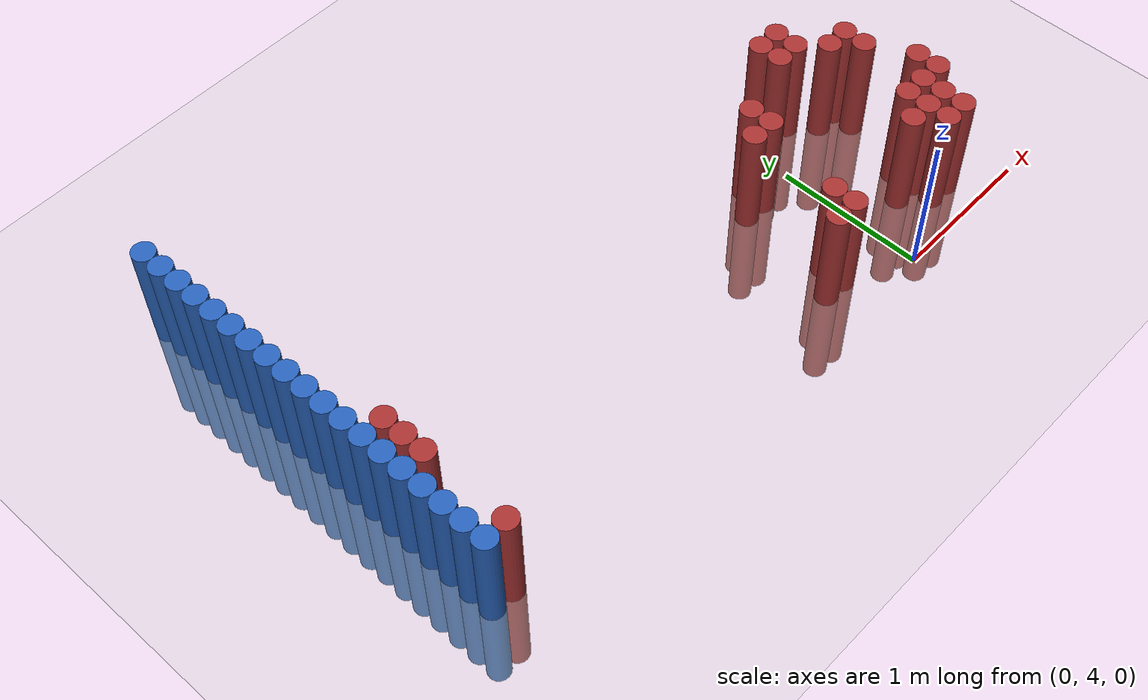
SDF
<sdf version="1.6">
 <world name="default">
  <model name="ground_plane">
   <static>1</static>
   <link name="link">
    <collision name="collision">
     <geometry><plane><normal>0 0 1</normal><size>100 100</size></plane></geometry>
     <surface><friction><ode><mu>100</mu><mu2>50</mu2></ode></friction></surface>
    </collision>
    <visual name="visual">
     <cast_shadows>0</cast_shadows>
     <geometry><plane><normal>0 0 1</normal><size>100 100</size></plane></geometry>
     <material>
      <script><uri>file://media/materials/scripts/gazebo.material</uri><name>Gazebo/Grey</name></script>
     </material>
    </visual>
   </link>
  </model>
  <model name="unit_cylinder_171">
   <static>1</static>
   <pose>-3.425000 4.225000 0.000000 0.000000 0.000000 0.000000</pose>
   <link name="link">
    <inertial>
     <mass>1</mass>
     <inertia><ixx>0.145833</ixx><ixy>0</ixy><ixz>0</ixz><iyy>0.145833</iyy><iyz>0</iyz><izz>0.125</izz></inertia>
    </inertial>
    <collision name="collision">
     <geometry><cylinder><radius>0.075000</radius><length>1.5</length></cylinder></geometry>
    </collision>
    <visual name="visual">
     <geometry><cylinder><radius>0.075000</radius><length>1.5</length></cylinder></geometry>
     <material>
      <ambient>0.152000 0.379000 0.720000 1</ambient>
      <diffuse>0.152000 0.379000 0.720000 1</diffuse>
     </material>
     <material>
      <script><name>Gazebo/Grey</name><uri>file://media/materials/scripts/gazebo.material</uri></script>
     </material>
    </visual>
   </link>
  </model>
  <model name="unit_cylinder_173">
   <static>1</static>
   <pose>-3.425000 4.375000 0.000000 0.000000 0.000000 0.000000</pose>
   <link name="link">
    <inertial>
     <mass>1</mass>
     <inertia><ixx>0.145833</ixx><ixy>0</ixy><ixz>0</ixz><iyy>0.145833</iyy><iyz>0</iyz><izz>0.125</izz></inertia>
    </inertial>
    <collision name="collision">
     <geometry><cylinder><radius>0.075000</radius><length>1.5</length></cylinder></geometry>
    </collision>
    <visual name="visual">
     <geometry><cylinder><radius>0.075000</radius><length>1.5</length></cylinder></geometry>
     <material>
      <ambient>0.152000 0.379000 0.720000 1</ambient>
      <diffuse>0.152000 0.379000 0.720000 1</diffuse>
     </material>
     <material>
      <script><name>Gazebo/Grey</name><uri>file://media/materials/scripts/gazebo.material</uri></script>
     </material>
    </visual>
   </link>
  </model>
  <model name="unit_cylinder_175">
   <static>1</static>
   <pose>-3.425000 4.525000 0.000000 0.000000 0.000000 0.000000</pose>
   <link name="link">
    <inertial>
     <mass>1</mass>
     <inertia><ixx>0.145833</ixx><ixy>0</ixy><ixz>0</ixz><iyy>0.145833</iyy><iyz>0</iyz><izz>0.125</izz></inertia>
    </inertial>
    <collision name="collision">
     <geometry><cylinder><radius>0.075000</radius><length>1.5</length></cylinder></geometry>
    </collision>
    <visual name="visual">
     <geometry><cylinder><radius>0.075000</radius><length>1.5</length></cylinder></geometry>
     <material>
      <ambient>0.152000 0.379000 0.720000 1</ambient>
      <diffuse>0.152000 0.379000 0.720000 1</diffuse>
     </material>
     <material>
      <script><name>Gazebo/Grey</name><uri>file://media/materials/scripts/gazebo.material</uri></script>
     </material>
    </visual>
   </link>
  </model>
  <model name="unit_cylinder_177">
   <static>1</static>
   <pose>-3.425000 4.675000 0.000000 0.000000 0.000000 0.000000</pose>
   <link name="link">
    <inertial>
     <mass>1</mass>
     <inertia><ixx>0.145833</ixx><ixy>0</ixy><ixz>0</ixz><iyy>0.145833</iyy><iyz>0</iyz><izz>0.125</izz></inertia>
    </inertial>
    <collision name="collision">
     <geometry><cylinder><radius>0.075000</radius><length>1.5</length></cylinder></geometry>
    </collision>
    <visual name="visual">
     <geometry><cylinder><radius>0.075000</radius><length>1.5</length></cylinder></geometry>
     <material>
      <ambient>0.152000 0.379000 0.720000 1</ambient>
      <diffuse>0.152000 0.379000 0.720000 1</diffuse>
     </material>
     <material>
      <script><name>Gazebo/Grey</name><uri>file://media/materials/scripts/gazebo.material</uri></script>
     </material>
    </visual>
   </link>
  </model>
  <model name="unit_cylinder_179">
   <static>1</static>
   <pose>-3.425000 4.825000 0.000000 0.000000 0.000000 0.000000</pose>
   <link name="link">
    <inertial>
     <mass>1</mass>
     <inertia><ixx>0.145833</ixx><ixy>0</ixy><ixz>0</ixz><iyy>0.145833</iyy><iyz>0</iyz><izz>0.125</izz></inertia>
    </inertial>
    <collision name="collision">
     <geometry><cylinder><radius>0.075000</radius><length>1.5</length></cylinder></geometry>
    </collision>
    <visual name="visual">
     <geometry><cylinder><radius>0.075000</radius><length>1.5</length></cylinder></geometry>
     <material>
      <ambient>0.152000 0.379000 0.720000 1</ambient>
      <diffuse>0.152000 0.379000 0.720000 1</diffuse>
     </material>
     <material>
      <script><name>Gazebo/Grey</name><uri>file://media/materials/scripts/gazebo.material</uri></script>
     </material>
    </visual>
   </link>
  </model>
  <model name="unit_cylinder_181">
   <static>1</static>
   <pose>-3.425000 4.975000 0.000000 0.000000 0.000000 0.000000</pose>
   <link name="link">
    <inertial>
     <mass>1</mass>
     <inertia><ixx>0.145833</ixx><ixy>0</ixy><ixz>0</ixz><iyy>0.145833</iyy><iyz>0</iyz><izz>0.125</izz></inertia>
    </inertial>
    <collision name="collision">
     <geometry><cylinder><radius>0.075000</radius><length>1.5</length></cylinder></geometry>
    </collision>
    <visual name="visual">
     <geometry><cylinder><radius>0.075000</radius><length>1.5</length></cylinder></geometry>
     <material>
      <ambient>0.152000 0.379000 0.720000 1</ambient>
      <diffuse>0.152000 0.379000 0.720000 1</diffuse>
     </material>
     <material>
      <script><name>Gazebo/Grey</name><uri>file://media/materials/scripts/gazebo.material</uri></script>
     </material>
    </visual>
   </link>
  </model>
  <model name="unit_cylinder_183">
   <static>1</static>
   <pose>-3.425000 5.125000 0.000000 0.000000 0.000000 0.000000</pose>
   <link name="link">
    <inertial>
     <mass>1</mass>
     <inertia><ixx>0.145833</ixx><ixy>0</ixy><ixz>0</ixz><iyy>0.145833</iyy><iyz>0</iyz><izz>0.125</izz></inertia>
    </inertial>
    <collision name="collision">
     <geometry><cylinder><radius>0.075000</radius><length>1.5</length></cylinder></geometry>
    </collision>
    <visual name="visual">
     <geometry><cylinder><radius>0.075000</radius><length>1.5</length></cylinder></geometry>
     <material>
      <ambient>0.152000 0.379000 0.720000 1</ambient>
      <diffuse>0.152000 0.379000 0.720000 1</diffuse>
     </material>
     <material>
      <script><name>Gazebo/Grey</name><uri>file://media/materials/scripts/gazebo.material</uri></script>
     </material>
    </visual>
   </link>
  </model>
  <model name="unit_cylinder_185">
   <static>1</static>
   <pose>-3.425000 5.275000 0.000000 0.000000 0.000000 0.000000</pose>
   <link name="link">
    <inertial>
     <mass>1</mass>
     <inertia><ixx>0.145833</ixx><ixy>0</ixy><ixz>0</ixz><iyy>0.145833</iyy><iyz>0</iyz><izz>0.125</izz></inertia>
    </inertial>
    <collision name="collision">
     <geometry><cylinder><radius>0.075000</radius><length>1.5</length></cylinder></geometry>
    </collision>
    <visual name="visual">
     <geometry><cylinder><radius>0.075000</radius><length>1.5</length></cylinder></geometry>
     <material>
      <ambient>0.152000 0.379000 0.720000 1</ambient>
      <diffuse>0.152000 0.379000 0.720000 1</diffuse>
     </material>
     <material>
      <script><name>Gazebo/Grey</name><uri>file://media/materials/scripts/gazebo.material</uri></script>
     </material>
    </visual>
   </link>
  </model>
  <model name="unit_cylinder_187">
   <static>1</static>
   <pose>-3.425000 5.425000 0.000000 0.000000 0.000000 0.000000</pose>
   <link name="link">
    <inertial>
     <mass>1</mass>
     <inertia><ixx>0.145833</ixx><ixy>0</ixy><ixz>0</ixz><iyy>0.145833</iyy><iyz>0</iyz><izz>0.125</izz></inertia>
    </inertial>
    <collision name="collision">
     <geometry><cylinder><radius>0.075000</radius><length>1.5</length></cylinder></geometry>
    </collision>
    <visual name="visual">
     <geometry><cylinder><radius>0.075000</radius><length>1.5</length></cylinder></geometry>
     <material>
      <ambient>0.152000 0.379000 0.720000 1</ambient>
      <diffuse>0.152000 0.379000 0.720000 1</diffuse>
     </material>
     <material>
      <script><name>Gazebo/Grey</name><uri>file://media/materials/scripts/gazebo.material</uri></script>
     </material>
    </visual>
   </link>
  </model>
  <model name="unit_cylinder_189">
   <static>1</static>
   <pose>-3.425000 5.575000 0.000000 0.000000 0.000000 0.000000</pose>
   <link name="link">
    <inertial>
     <mass>1</mass>
     <inertia><ixx>0.145833</ixx><ixy>0</ixy><ixz>0</ixz><iyy>0.145833</iyy><iyz>0</iyz><izz>0.125</izz></inertia>
    </inertial>
    <collision name="collision">
     <geometry><cylinder><radius>0.075000</radius><length>1.5</length></cylinder></geometry>
    </collision>
    <visual name="visual">
     <geometry><cylinder><radius>0.075000</radius><length>1.5</length></cylinder></geometry>
     <material>
      <ambient>0.152000 0.379000 0.720000 1</ambient>
      <diffuse>0.152000 0.379000 0.720000 1</diffuse>
     </material>
     <material>
      <script><name>Gazebo/Grey</name><uri>file://media/materials/scripts/gazebo.material</uri></script>
     </material>
    </visual>
   </link>
  </model>
  <model name="unit_cylinder_191">
   <static>1</static>
   <pose>-3.425000 5.725000 0.000000 0.000000 0.000000 0.000000</pose>
   <link name="link">
    <inertial>
     <mass>1</mass>
     <inertia><ixx>0.145833</ixx><ixy>0</ixy><ixz>0</ixz><iyy>0.145833</iyy><iyz>0</iyz><izz>0.125</izz></inertia>
    </inertial>
    <collision name="collision">
     <geometry><cylinder><radius>0.075000</radius><length>1.5</length></cylinder></geometry>
    </collision>
    <visual name="visual">
     <geometry><cylinder><radius>0.075000</radius><length>1.5</length></cylinder></geometry>
     <material>
      <ambient>0.152000 0.379000 0.720000 1</ambient>
      <diffuse>0.152000 0.379000 0.720000 1</diffuse>
     </material>
     <material>
      <script><name>Gazebo/Grey</name><uri>file://media/materials/scripts/gazebo.material</uri></script>
     </material>
    </visual>
   </link>
  </model>
  <model name="unit_cylinder_193">
   <static>1</static>
   <pose>-3.425000 5.875000 0.000000 0.000000 0.000000 0.000000</pose>
   <link name="link">
    <inertial>
     <mass>1</mass>
     <inertia><ixx>0.145833</ixx><ixy>0</ixy><ixz>0</ixz><iyy>0.145833</iyy><iyz>0</iyz><izz>0.125</izz></inertia>
    </inertial>
    <collision name="collision">
     <geometry><cylinder><radius>0.075000</radius><length>1.5</length></cylinder></geometry>
    </collision>
    <visual name="visual">
     <geometry><cylinder><radius>0.075000</radius><length>1.5</length></cylinder></geometry>
     <material>
      <ambient>0.152000 0.379000 0.720000 1</ambient>
      <diffuse>0.152000 0.379000 0.720000 1</diffuse>
     </material>
     <material>
      <script><name>Gazebo/Grey</name><uri>file://media/materials/scripts/gazebo.material</uri></script>
     </material>
    </visual>
   </link>
  </model>
  <model name="unit_cylinder_195">
   <static>1</static>
   <pose>-3.425000 6.025000 0.000000 0.000000 0.000000 0.000000</pose>
   <link name="link">
    <inertial>
     <mass>1</mass>
     <inertia><ixx>0.145833</ixx><ixy>0</ixy><ixz>0</ixz><iyy>0.145833</iyy><iyz>0</iyz><izz>0.125</izz></inertia>
    </inertial>
    <collision name="collision">
     <geometry><cylinder><radius>0.075000</radius><length>1.5</length></cylinder></geometry>
    </collision>
    <visual name="visual">
     <geometry><cylinder><radius>0.075000</radius><length>1.5</length></cylinder></geometry>
     <material>
      <ambient>0.152000 0.379000 0.720000 1</ambient>
      <diffuse>0.152000 0.379000 0.720000 1</diffuse>
     </material>
     <material>
      <script><name>Gazebo/Grey</name><uri>file://media/materials/scripts/gazebo.material</uri></script>
     </material>
    </visual>
   </link>
  </model>
  <model name="unit_cylinder_197">
   <static>1</static>
   <pose>-3.425000 6.175000 0.000000 0.000000 0.000000 0.000000</pose>
   <link name="link">
    <inertial>
     <mass>1</mass>
     <inertia><ixx>0.145833</ixx><ixy>0</ixy><ixz>0</ixz><iyy>0.145833</iyy><iyz>0</iyz><izz>0.125</izz></inertia>
    </inertial>
    <collision name="collision">
     <geometry><cylinder><radius>0.075000</radius><length>1.5</length></cylinder></geometry>
    </collision>
    <visual name="visual">
     <geometry><cylinder><radius>0.075000</radius><length>1.5</length></cylinder></geometry>
     <material>
      <ambient>0.152000 0.379000 0.720000 1</ambient>
      <diffuse>0.152000 0.379000 0.720000 1</diffuse>
     </material>
     <material>
      <script><name>Gazebo/Grey</name><uri>file://media/materials/scripts/gazebo.material</uri></script>
     </material>
    </visual>
   </link>
  </model>
  <model name="unit_cylinder_199">
   <static>1</static>
   <pose>-3.425000 6.325000 0.000000 0.000000 0.000000 0.000000</pose>
   <link name="link">
    <inertial>
     <mass>1</mass>
     <inertia><ixx>0.145833</ixx><ixy>0</ixy><ixz>0</ixz><iyy>0.145833</iyy><iyz>0</iyz><izz>0.125</izz></inertia>
    </inertial>
    <collision name="collision">
     <geometry><cylinder><radius>0.075000</radius><length>1.5</length></cylinder></geometry>
    </collision>
    <visual name="visual">
     <geometry><cylinder><radius>0.075000</radius><length>1.5</length></cylinder></geometry>
     <material>
      <ambient>0.152000 0.379000 0.720000 1</ambient>
      <diffuse>0.152000 0.379000 0.720000 1</diffuse>
     </material>
     <material>
      <script><name>Gazebo/Grey</name><uri>file://media/materials/scripts/gazebo.material</uri></script>
     </material>
    </visual>
   </link>
  </model>
  <model name="unit_cylinder_201">
   <static>1</static>
   <pose>-3.425000 6.475000 0.000000 0.000000 0.000000 0.000000</pose>
   <link name="link">
    <inertial>
     <mass>1</mass>
     <inertia><ixx>0.145833</ixx><ixy>0</ixy><ixz>0</ixz><iyy>0.145833</iyy><iyz>0</iyz><izz>0.125</izz></inertia>
    </inertial>
    <collision name="collision">
     <geometry><cylinder><radius>0.075000</radius><length>1.5</length></cylinder></geometry>
    </collision>
    <visual name="visual">
     <geometry><cylinder><radius>0.075000</radius><length>1.5</length></cylinder></geometry>
     <material>
      <ambient>0.152000 0.379000 0.720000 1</ambient>
      <diffuse>0.152000 0.379000 0.720000 1</diffuse>
     </material>
     <material>
      <script><name>Gazebo/Grey</name><uri>file://media/materials/scripts/gazebo.material</uri></script>
     </material>
    </visual>
   </link>
  </model>
  <model name="unit_cylinder_203">
   <static>1</static>
   <pose>-3.425000 6.625000 0.000000 0.000000 0.000000 0.000000</pose>
   <link name="link">
    <inertial>
     <mass>1</mass>
     <inertia><ixx>0.145833</ixx><ixy>0</ixy><ixz>0</ixz><iyy>0.145833</iyy><iyz>0</iyz><izz>0.125</izz></inertia>
    </inertial>
    <collision name="collision">
     <geometry><cylinder><radius>0.075000</radius><length>1.5</length></cylinder></geometry>
    </collision>
    <visual name="visual">
     <geometry><cylinder><radius>0.075000</radius><length>1.5</length></cylinder></geometry>
     <material>
      <ambient>0.152000 0.379000 0.720000 1</ambient>
      <diffuse>0.152000 0.379000 0.720000 1</diffuse>
     </material>
     <material>
      <script><name>Gazebo/Grey</name><uri>file://media/materials/scripts/gazebo.material</uri></script>
     </material>
    </visual>
   </link>
  </model>
  <model name="unit_cylinder_205">
   <static>1</static>
   <pose>-3.425000 6.775000 0.000000 0.000000 0.000000 0.000000</pose>
   <link name="link">
    <inertial>
     <mass>1</mass>
     <inertia><ixx>0.145833</ixx><ixy>0</ixy><ixz>0</ixz><iyy>0.145833</iyy><iyz>0</iyz><izz>0.125</izz></inertia>
    </inertial>
    <collision name="collision">
     <geometry><cylinder><radius>0.075000</radius><length>1.5</length></cylinder></geometry>
    </collision>
    <visual name="visual">
     <geometry><cylinder><radius>0.075000</radius><length>1.5</length></cylinder></geometry>
     <material>
      <ambient>0.152000 0.379000 0.720000 1</ambient>
      <diffuse>0.152000 0.379000 0.720000 1</diffuse>
     </material>
     <material>
      <script><name>Gazebo/Grey</name><uri>file://media/materials/scripts/gazebo.material</uri></script>
     </material>
    </visual>
   </link>
  </model>
  <model name="unit_cylinder_207">
   <static>1</static>
   <pose>-3.425000 6.925000 0.000000 0.000000 0.000000 0.000000</pose>
   <link name="link">
    <inertial>
     <mass>1</mass>
     <inertia><ixx>0.145833</ixx><ixy>0</ixy><ixz>0</ixz><iyy>0.145833</iyy><iyz>0</iyz><izz>0.125</izz></inertia>
    </inertial>
    <collision name="collision">
     <geometry><cylinder><radius>0.075000</radius><length>1.5</length></cylinder></geometry>
    </collision>
    <visual name="visual">
     <geometry><cylinder><radius>0.075000</radius><length>1.5</length></cylinder></geometry>
     <material>
      <ambient>0.152000 0.379000 0.720000 1</ambient>
      <diffuse>0.152000 0.379000 0.720000 1</diffuse>
     </material>
     <material>
      <script><name>Gazebo/Grey</name><uri>file://media/materials/scripts/gazebo.material</uri></script>
     </material>
    </visual>
   </link>
  </model>
  <model name="unit_cylinder_249">
   <static>1</static>
   <pose>-3.425000 4.225000 0.000000 0.000000 0.000000 0.000000</pose>
   <link name="link">
    <inertial>
     <mass>1</mass>
     <inertia><ixx>0.145833</ixx><ixy>0</ixy><ixz>0</ixz><iyy>0.145833</iyy><iyz>0</iyz><izz>0.125</izz></inertia>
    </inertial>
    <collision name="collision">
     <geometry><cylinder><radius>0.075000</radius><length>1.5</length></cylinder></geometry>
    </collision>
    <visual name="visual">
     <geometry><cylinder><radius>0.075000</radius><length>1.5</length></cylinder></geometry>
     <material>
      <ambient>0.152000 0.379000 0.720000 1</ambient>
      <diffuse>0.152000 0.379000 0.720000 1</diffuse>
     </material>
     <material>
      <script><name>Gazebo/Grey</name><uri>file://media/materials/scripts/gazebo.material</uri></script>
     </material>
    </visual>
   </link>
  </model>
  <model name="unit_cylinder_250">
   <static>1</static>
   <pose>-3.425000 4.375000 0.000000 0.000000 0.000000 0.000000</pose>
   <link name="link">
    <inertial>
     <mass>1</mass>
     <inertia><ixx>0.145833</ixx><ixy>0</ixy><ixz>0</ixz><iyy>0.145833</iyy><iyz>0</iyz><izz>0.125</izz></inertia>
    </inertial>
    <collision name="collision">
     <geometry><cylinder><radius>0.075000</radius><length>1.5</length></cylinder></geometry>
    </collision>
    <visual name="visual">
     <geometry><cylinder><radius>0.075000</radius><length>1.5</length></cylinder></geometry>
     <material>
      <ambient>0.152000 0.379000 0.720000 1</ambient>
      <diffuse>0.152000 0.379000 0.720000 1</diffuse>
     </material>
     <material>
      <script><name>Gazebo/Grey</name><uri>file://media/materials/scripts/gazebo.material</uri></script>
     </material>
    </visual>
   </link>
  </model>
  <model name="unit_cylinder_251">
   <static>1</static>
   <pose>-3.425000 4.525000 0.000000 0.000000 0.000000 0.000000</pose>
   <link name="link">
    <inertial>
     <mass>1</mass>
     <inertia><ixx>0.145833</ixx><ixy>0</ixy><ixz>0</ixz><iyy>0.145833</iyy><iyz>0</iyz><izz>0.125</izz></inertia>
    </inertial>
    <collision name="collision">
     <geometry><cylinder><radius>0.075000</radius><length>1.5</length></cylinder></geometry>
    </collision>
    <visual name="visual">
     <geometry><cylinder><radius>0.075000</radius><length>1.5</length></cylinder></geometry>
     <material>
      <ambient>0.152000 0.379000 0.720000 1</ambient>
      <diffuse>0.152000 0.379000 0.720000 1</diffuse>
     </material>
     <material>
      <script><name>Gazebo/Grey</name><uri>file://media/materials/scripts/gazebo.material</uri></script>
     </material>
    </visual>
   </link>
  </model>
  <model name="unit_cylinder_252">
   <static>1</static>
   <pose>-3.425000 4.675000 0.000000 0.000000 0.000000 0.000000</pose>
   <link name="link">
    <inertial>
     <mass>1</mass>
     <inertia><ixx>0.145833</ixx><ixy>0</ixy><ixz>0</ixz><iyy>0.145833</iyy><iyz>0</iyz><izz>0.125</izz></inertia>
    </inertial>
    <collision name="collision">
     <geometry><cylinder><radius>0.075000</radius><length>1.5</length></cylinder></geometry>
    </collision>
    <visual name="visual">
     <geometry><cylinder><radius>0.075000</radius><length>1.5</length></cylinder></geometry>
     <material>
      <ambient>0.152000 0.379000 0.720000 1</ambient>
      <diffuse>0.152000 0.379000 0.720000 1</diffuse>
     </material>
     <material>
      <script><name>Gazebo/Grey</name><uri>file://media/materials/scripts/gazebo.material</uri></script>
     </material>
    </visual>
   </link>
  </model>
  <model name="unit_cylinder_253">
   <static>1</static>
   <pose>-3.425000 4.825000 0.000000 0.000000 0.000000 0.000000</pose>
   <link name="link">
    <inertial>
     <mass>1</mass>
     <inertia><ixx>0.145833</ixx><ixy>0</ixy><ixz>0</ixz><iyy>0.145833</iyy><iyz>0</iyz><izz>0.125</izz></inertia>
    </inertial>
    <collision name="collision">
     <geometry><cylinder><radius>0.075000</radius><length>1.5</length></cylinder></geometry>
    </collision>
    <visual name="visual">
     <geometry><cylinder><radius>0.075000</radius><length>1.5</length></cylinder></geometry>
     <material>
      <ambient>0.152000 0.379000 0.720000 1</ambient>
      <diffuse>0.152000 0.379000 0.720000 1</diffuse>
     </material>
     <material>
      <script><name>Gazebo/Grey</name><uri>file://media/materials/scripts/gazebo.material</uri></script>
     </material>
    </visual>
   </link>
  </model>
  <model name="unit_cylinder_254">
   <static>1</static>
   <pose>-3.425000 4.975000 0.000000 0.000000 0.000000 0.000000</pose>
   <link name="link">
    <inertial>
     <mass>1</mass>
     <inertia><ixx>0.145833</ixx><ixy>0</ixy><ixz>0</ixz><iyy>0.145833</iyy><iyz>0</iyz><izz>0.125</izz></inertia>
    </inertial>
    <collision name="collision">
     <geometry><cylinder><radius>0.075000</radius><length>1.5</length></cylinder></geometry>
    </collision>
    <visual name="visual">
     <geometry><cylinder><radius>0.075000</radius><length>1.5</length></cylinder></geometry>
     <material>
      <ambient>0.152000 0.379000 0.720000 1</ambient>
      <diffuse>0.152000 0.379000 0.720000 1</diffuse>
     </material>
     <material>
      <script><name>Gazebo/Grey</name><uri>file://media/materials/scripts/gazebo.material</uri></script>
     </material>
    </visual>
   </link>
  </model>
  <model name="unit_cylinder_255">
   <static>1</static>
   <pose>-3.425000 5.125000 0.000000 0.000000 0.000000 0.000000</pose>
   <link name="link">
    <inertial>
     <mass>1</mass>
     <inertia><ixx>0.145833</ixx><ixy>0</ixy><ixz>0</ixz><iyy>0.145833</iyy><iyz>0</iyz><izz>0.125</izz></inertia>
    </inertial>
    <collision name="collision">
     <geometry><cylinder><radius>0.075000</radius><length>1.5</length></cylinder></geometry>
    </collision>
    <visual name="visual">
     <geometry><cylinder><radius>0.075000</radius><length>1.5</length></cylinder></geometry>
     <material>
      <ambient>0.152000 0.379000 0.720000 1</ambient>
      <diffuse>0.152000 0.379000 0.720000 1</diffuse>
     </material>
     <material>
      <script><name>Gazebo/Grey</name><uri>file://media/materials/scripts/gazebo.material</uri></script>
     </material>
    </visual>
   </link>
  </model>
  <model name="unit_cylinder_256">
   <static>1</static>
   <pose>-3.425000 5.275000 0.000000 0.000000 0.000000 0.000000</pose>
   <link name="link">
    <inertial>
     <mass>1</mass>
     <inertia><ixx>0.145833</ixx><ixy>0</ixy><ixz>0</ixz><iyy>0.145833</iyy><iyz>0</iyz><izz>0.125</izz></inertia>
    </inertial>
    <collision name="collision">
     <geometry><cylinder><radius>0.075000</radius><length>1.5</length></cylinder></geometry>
    </collision>
    <visual name="visual">
     <geometry><cylinder><radius>0.075000</radius><length>1.5</length></cylinder></geometry>
     <material>
      <ambient>0.152000 0.379000 0.720000 1</ambient>
      <diffuse>0.152000 0.379000 0.720000 1</diffuse>
     </material>
     <material>
      <script><name>Gazebo/Grey</name><uri>file://media/materials/scripts/gazebo.material</uri></script>
     </material>
    </visual>
   </link>
  </model>
  <model name="unit_cylinder_257">
   <static>1</static>
   <pose>-3.425000 5.425000 0.000000 0.000000 0.000000 0.000000</pose>
   <link name="link">
    <inertial>
     <mass>1</mass>
     <inertia><ixx>0.145833</ixx><ixy>0</ixy><ixz>0</ixz><iyy>0.145833</iyy><iyz>0</iyz><izz>0.125</izz></inertia>
    </inertial>
    <collision name="collision">
     <geometry><cylinder><radius>0.075000</radius><length>1.5</length></cylinder></geometry>
    </collision>
    <visual name="visual">
     <geometry><cylinder><radius>0.075000</radius><length>1.5</length></cylinder></geometry>
     <material>
      <ambient>0.152000 0.379000 0.720000 1</ambient>
      <diffuse>0.152000 0.379000 0.720000 1</diffuse>
     </material>
     <material>
      <script><name>Gazebo/Grey</name><uri>file://media/materials/scripts/gazebo.material</uri></script>
     </material>
    </visual>
   </link>
  </model>
  <model name="unit_cylinder_268">
   <static>1</static>
   <pose>-3.275000 4.225000 0.000000 0.000000 0.000000 0.000000</pose>
   <link name="link">
    <inertial>
     <mass>1</mass>
     <inertia><ixx>0.145833</ixx><ixy>0</ixy><ixz>0</ixz><iyy>0.145833</iyy><iyz>0</iyz><izz>0.125</izz></inertia>
    </inertial>
    <collision name="collision">
     <geometry><cylinder><radius>0.075000</radius><length>1.5</length></cylinder></geometry>
    </collision>
    <visual name="visual">
     <geometry><cylinder><radius>0.075000</radius><length>1.5</length></cylinder></geometry>
     <material>
      <ambient>0.648000 0.192000 0.192000 1</ambient>
      <diffuse>0.648000 0.192000 0.192000 1</diffuse>
     </material>
     <material>
      <script><name>Gazebo/Grey</name><uri>file://media/materials/scripts/gazebo.material</uri></script>
     </material>
    </visual>
   </link>
  </model>
  <model name="unit_cylinder_269">
   <static>1</static>
   <pose>-3.275000 4.825000 0.000000 0.000000 0.000000 0.000000</pose>
   <link name="link">
    <inertial>
     <mass>1</mass>
     <inertia><ixx>0.145833</ixx><ixy>0</ixy><ixz>0</ixz><iyy>0.145833</iyy><iyz>0</iyz><izz>0.125</izz></inertia>
    </inertial>
    <collision name="collision">
     <geometry><cylinder><radius>0.075000</radius><length>1.5</length></cylinder></geometry>
    </collision>
    <visual name="visual">
     <geometry><cylinder><radius>0.075000</radius><length>1.5</length></cylinder></geometry>
     <material>
      <ambient>0.648000 0.192000 0.192000 1</ambient>
      <diffuse>0.648000 0.192000 0.192000 1</diffuse>
     </material>
     <material>
      <script><name>Gazebo/Grey</name><uri>file://media/materials/scripts/gazebo.material</uri></script>
     </material>
    </visual>
   </link>
  </model>
  <model name="unit_cylinder_270">
   <static>1</static>
   <pose>-3.275000 4.975000 0.000000 0.000000 0.000000 0.000000</pose>
   <link name="link">
    <inertial>
     <mass>1</mass>
     <inertia><ixx>0.145833</ixx><ixy>0</ixy><ixz>0</ixz><iyy>0.145833</iyy><iyz>0</iyz><izz>0.125</izz></inertia>
    </inertial>
    <collision name="collision">
     <geometry><cylinder><radius>0.075000</radius><length>1.5</length></cylinder></geometry>
    </collision>
    <visual name="visual">
     <geometry><cylinder><radius>0.075000</radius><length>1.5</length></cylinder></geometry>
     <material>
      <ambient>0.648000 0.192000 0.192000 1</ambient>
      <diffuse>0.648000 0.192000 0.192000 1</diffuse>
     </material>
     <material>
      <script><name>Gazebo/Grey</name><uri>file://media/materials/scripts/gazebo.material</uri></script>
     </material>
    </visual>
   </link>
  </model>
  <model name="unit_cylinder_271">
   <static>1</static>
   <pose>-3.275000 5.125000 0.000000 0.000000 0.000000 0.000000</pose>
   <link name="link">
    <inertial>
     <mass>1</mass>
     <inertia><ixx>0.145833</ixx><ixy>0</ixy><ixz>0</ixz><iyy>0.145833</iyy><iyz>0</iyz><izz>0.125</izz></inertia>
    </inertial>
    <collision name="collision">
     <geometry><cylinder><radius>0.075000</radius><length>1.5</length></cylinder></geometry>
    </collision>
    <visual name="visual">
     <geometry><cylinder><radius>0.075000</radius><length>1.5</length></cylinder></geometry>
     <material>
      <ambient>0.648000 0.192000 0.192000 1</ambient>
      <diffuse>0.648000 0.192000 0.192000 1</diffuse>
     </material>
     <material>
      <script><name>Gazebo/Grey</name><uri>file://media/materials/scripts/gazebo.material</uri></script>
     </material>
    </visual>
   </link>
  </model>
  <model name="unit_cylinder_327">
   <static>1</static>
   <pose>-0.575000 4.225000 0.000000 0.000000 0.000000 0.000000</pose>
   <link name="link">
    <inertial>
     <mass>1</mass>
     <inertia><ixx>0.145833</ixx><ixy>0</ixy><ixz>0</ixz><iyy>0.145833</iyy><iyz>0</iyz><izz>0.125</izz></inertia>
    </inertial>
    <collision name="collision">
     <geometry><cylinder><radius>0.075000</radius><length>1.5</length></cylinder></geometry>
    </collision>
    <visual name="visual">
     <geometry><cylinder><radius>0.075000</radius><length>1.5</length></cylinder></geometry>
     <material>
      <ambient>0.648000 0.192000 0.192000 1</ambient>
      <diffuse>0.648000 0.192000 0.192000 1</diffuse>
     </material>
     <material>
      <script><name>Gazebo/Grey</name><uri>file://media/materials/scripts/gazebo.material</uri></script>
     </material>
    </visual>
   </link>
  </model>
  <model name="unit_cylinder_339">
   <static>1</static>
   <pose>-0.425000 4.225000 0.000000 0.000000 0.000000 0.000000</pose>
   <link name="link">
    <inertial>
     <mass>1</mass>
     <inertia><ixx>0.145833</ixx><ixy>0</ixy><ixz>0</ixz><iyy>0.145833</iyy><iyz>0</iyz><izz>0.125</izz></inertia>
    </inertial>
    <collision name="collision">
     <geometry><cylinder><radius>0.075000</radius><length>1.5</length></cylinder></geometry>
    </collision>
    <visual name="visual">
     <geometry><cylinder><radius>0.075000</radius><length>1.5</length></cylinder></geometry>
     <material>
      <ambient>0.648000 0.192000 0.192000 1</ambient>
      <diffuse>0.648000 0.192000 0.192000 1</diffuse>
     </material>
     <material>
      <script><name>Gazebo/Grey</name><uri>file://media/materials/scripts/gazebo.material</uri></script>
     </material>
    </visual>
   </link>
  </model>
  <model name="unit_cylinder_340">
   <static>1</static>
   <pose>-0.425000 4.375000 0.000000 0.000000 0.000000 0.000000</pose>
   <link name="link">
    <inertial>
     <mass>1</mass>
     <inertia><ixx>0.145833</ixx><ixy>0</ixy><ixz>0</ixz><iyy>0.145833</iyy><iyz>0</iyz><izz>0.125</izz></inertia>
    </inertial>
    <collision name="collision">
     <geometry><cylinder><radius>0.075000</radius><length>1.5</length></cylinder></geometry>
    </collision>
    <visual name="visual">
     <geometry><cylinder><radius>0.075000</radius><length>1.5</length></cylinder></geometry>
     <material>
      <ambient>0.648000 0.192000 0.192000 1</ambient>
      <diffuse>0.648000 0.192000 0.192000 1</diffuse>
     </material>
     <material>
      <script><name>Gazebo/Grey</name><uri>file://media/materials/scripts/gazebo.material</uri></script>
     </material>
    </visual>
   </link>
  </model>
  <model name="unit_cylinder_341">
   <static>1</static>
   <pose>-0.425000 4.975000 0.000000 0.000000 0.000000 0.000000</pose>
   <link name="link">
    <inertial>
     <mass>1</mass>
     <inertia><ixx>0.145833</ixx><ixy>0</ixy><ixz>0</ixz><iyy>0.145833</iyy><iyz>0</iyz><izz>0.125</izz></inertia>
    </inertial>
    <collision name="collision">
     <geometry><cylinder><radius>0.075000</radius><length>1.5</length></cylinder></geometry>
    </collision>
    <visual name="visual">
     <geometry><cylinder><radius>0.075000</radius><length>1.5</length></cylinder></geometry>
     <material>
      <ambient>0.648000 0.192000 0.192000 1</ambient>
      <diffuse>0.648000 0.192000 0.192000 1</diffuse>
     </material>
     <material>
      <script><name>Gazebo/Grey</name><uri>file://media/materials/scripts/gazebo.material</uri></script>
     </material>
    </visual>
   </link>
  </model>
  <model name="unit_cylinder_357">
   <static>1</static>
   <pose>-0.275000 4.975000 0.000000 0.000000 0.000000 0.000000</pose>
   <link name="link">
    <inertial>
     <mass>1</mass>
     <inertia><ixx>0.145833</ixx><ixy>0</ixy><ixz>0</ixz><iyy>0.145833</iyy><iyz>0</iyz><izz>0.125</izz></inertia>
    </inertial>
    <collision name="collision">
     <geometry><cylinder><radius>0.075000</radius><length>1.5</length></cylinder></geometry>
    </collision>
    <visual name="visual">
     <geometry><cylinder><radius>0.075000</radius><length>1.5</length></cylinder></geometry>
     <material>
      <ambient>0.648000 0.192000 0.192000 1</ambient>
      <diffuse>0.648000 0.192000 0.192000 1</diffuse>
     </material>
     <material>
      <script><name>Gazebo/Grey</name><uri>file://media/materials/scripts/gazebo.material</uri></script>
     </material>
    </visual>
   </link>
  </model>
  <model name="unit_cylinder_358">
   <static>1</static>
   <pose>-0.275000 5.125000 0.000000 0.000000 0.000000 0.000000</pose>
   <link name="link">
    <inertial>
     <mass>1</mass>
     <inertia><ixx>0.145833</ixx><ixy>0</ixy><ixz>0</ixz><iyy>0.145833</iyy><iyz>0</iyz><izz>0.125</izz></inertia>
    </inertial>
    <collision name="collision">
     <geometry><cylinder><radius>0.075000</radius><length>1.5</length></cylinder></geometry>
    </collision>
    <visual name="visual">
     <geometry><cylinder><radius>0.075000</radius><length>1.5</length></cylinder></geometry>
     <material>
      <ambient>0.648000 0.192000 0.192000 1</ambient>
      <diffuse>0.648000 0.192000 0.192000 1</diffuse>
     </material>
     <material>
      <script><name>Gazebo/Grey</name><uri>file://media/materials/scripts/gazebo.material</uri></script>
     </material>
    </visual>
   </link>
  </model>
  <model name="unit_cylinder_378">
   <static>1</static>
   <pose>0.175000 5.275000 0.000000 0.000000 0.000000 0.000000</pose>
   <link name="link">
    <inertial>
     <mass>1</mass>
     <inertia><ixx>0.145833</ixx><ixy>0</ixy><ixz>0</ixz><iyy>0.145833</iyy><iyz>0</iyz><izz>0.125</izz></inertia>
    </inertial>
    <collision name="collision">
     <geometry><cylinder><radius>0.075000</radius><length>1.5</length></cylinder></geometry>
    </collision>
    <visual name="visual">
     <geometry><cylinder><radius>0.075000</radius><length>1.5</length></cylinder></geometry>
     <material>
      <ambient>0.648000 0.192000 0.192000 1</ambient>
      <diffuse>0.648000 0.192000 0.192000 1</diffuse>
     </material>
     <material>
      <script><name>Gazebo/Grey</name><uri>file://media/materials/scripts/gazebo.material</uri></script>
     </material>
    </visual>
   </link>
  </model>
  <model name="unit_cylinder_379">
   <static>1</static>
   <pose>0.175000 5.425000 0.000000 0.000000 0.000000 0.000000</pose>
   <link name="link">
    <inertial>
     <mass>1</mass>
     <inertia><ixx>0.145833</ixx><ixy>0</ixy><ixz>0</ixz><iyy>0.145833</iyy><iyz>0</iyz><izz>0.125</izz></inertia>
    </inertial>
    <collision name="collision">
     <geometry><cylinder><radius>0.075000</radius><length>1.5</length></cylinder></geometry>
    </collision>
    <visual name="visual">
     <geometry><cylinder><radius>0.075000</radius><length>1.5</length></cylinder></geometry>
     <material>
      <ambient>0.648000 0.192000 0.192000 1</ambient>
      <diffuse>0.648000 0.192000 0.192000 1</diffuse>
     </material>
     <material>
      <script><name>Gazebo/Grey</name><uri>file://media/materials/scripts/gazebo.material</uri></script>
     </material>
    </visual>
   </link>
  </model>
  <model name="unit_cylinder_386">
   <static>1</static>
   <pose>0.325000 4.375000 0.000000 0.000000 0.000000 0.000000</pose>
   <link name="link">
    <inertial>
     <mass>1</mass>
     <inertia><ixx>0.145833</ixx><ixy>0</ixy><ixz>0</ixz><iyy>0.145833</iyy><iyz>0</iyz><izz>0.125</izz></inertia>
    </inertial>
    <collision name="collision">
     <geometry><cylinder><radius>0.075000</radius><length>1.5</length></cylinder></geometry>
    </collision>
    <visual name="visual">
     <geometry><cylinder><radius>0.075000</radius><length>1.5</length></cylinder></geometry>
     <material>
      <ambient>0.648000 0.192000 0.192000 1</ambient>
      <diffuse>0.648000 0.192000 0.192000 1</diffuse>
     </material>
     <material>
      <script><name>Gazebo/Grey</name><uri>file://media/materials/scripts/gazebo.material</uri></script>
     </material>
    </visual>
   </link>
  </model>
  <model name="unit_cylinder_387">
   <static>1</static>
   <pose>0.325000 5.275000 0.000000 0.000000 0.000000 0.000000</pose>
   <link name="link">
    <inertial>
     <mass>1</mass>
     <inertia><ixx>0.145833</ixx><ixy>0</ixy><ixz>0</ixz><iyy>0.145833</iyy><iyz>0</iyz><izz>0.125</izz></inertia>
    </inertial>
    <collision name="collision">
     <geometry><cylinder><radius>0.075000</radius><length>1.5</length></cylinder></geometry>
    </collision>
    <visual name="visual">
     <geometry><cylinder><radius>0.075000</radius><length>1.5</length></cylinder></geometry>
     <material>
      <ambient>0.648000 0.192000 0.192000 1</ambient>
      <diffuse>0.648000 0.192000 0.192000 1</diffuse>
     </material>
     <material>
      <script><name>Gazebo/Grey</name><uri>file://media/materials/scripts/gazebo.material</uri></script>
     </material>
    </visual>
   </link>
  </model>
  <model name="unit_cylinder_388">
   <static>1</static>
   <pose>0.325000 5.425000 0.000000 0.000000 0.000000 0.000000</pose>
   <link name="link">
    <inertial>
     <mass>1</mass>
     <inertia><ixx>0.145833</ixx><ixy>0</ixy><ixz>0</ixz><iyy>0.145833</iyy><iyz>0</iyz><izz>0.125</izz></inertia>
    </inertial>
    <collision name="collision">
     <geometry><cylinder><radius>0.075000</radius><length>1.5</length></cylinder></geometry>
    </collision>
    <visual name="visual">
     <geometry><cylinder><radius>0.075000</radius><length>1.5</length></cylinder></geometry>
     <material>
      <ambient>0.648000 0.192000 0.192000 1</ambient>
      <diffuse>0.648000 0.192000 0.192000 1</diffuse>
     </material>
     <material>
      <script><name>Gazebo/Grey</name><uri>file://media/materials/scripts/gazebo.material</uri></script>
     </material>
    </visual>
   </link>
  </model>
  <model name="unit_cylinder_397">
   <static>1</static>
   <pose>0.475000 4.225000 0.000000 0.000000 0.000000 0.000000</pose>
   <link name="link">
    <inertial>
     <mass>1</mass>
     <inertia><ixx>0.145833</ixx><ixy>0</ixy><ixz>0</ixz><iyy>0.145833</iyy><iyz>0</iyz><izz>0.125</izz></inertia>
    </inertial>
    <collision name="collision">
     <geometry><cylinder><radius>0.075000</radius><length>1.5</length></cylinder></geometry>
    </collision>
    <visual name="visual">
     <geometry><cylinder><radius>0.075000</radius><length>1.5</length></cylinder></geometry>
     <material>
      <ambient>0.648000 0.192000 0.192000 1</ambient>
      <diffuse>0.648000 0.192000 0.192000 1</diffuse>
     </material>
     <material>
      <script><name>Gazebo/Grey</name><uri>file://media/materials/scripts/gazebo.material</uri></script>
     </material>
    </visual>
   </link>
  </model>
  <model name="unit_cylinder_398">
   <static>1</static>
   <pose>0.475000 4.375000 0.000000 0.000000 0.000000 0.000000</pose>
   <link name="link">
    <inertial>
     <mass>1</mass>
     <inertia><ixx>0.145833</ixx><ixy>0</ixy><ixz>0</ixz><iyy>0.145833</iyy><iyz>0</iyz><izz>0.125</izz></inertia>
    </inertial>
    <collision name="collision">
     <geometry><cylinder><radius>0.075000</radius><length>1.5</length></cylinder></geometry>
    </collision>
    <visual name="visual">
     <geometry><cylinder><radius>0.075000</radius><length>1.5</length></cylinder></geometry>
     <material>
      <ambient>0.648000 0.192000 0.192000 1</ambient>
      <diffuse>0.648000 0.192000 0.192000 1</diffuse>
     </material>
     <material>
      <script><name>Gazebo/Grey</name><uri>file://media/materials/scripts/gazebo.material</uri></script>
     </material>
    </visual>
   </link>
  </model>
  <model name="unit_cylinder_399">
   <static>1</static>
   <pose>0.475000 4.525000 0.000000 0.000000 0.000000 0.000000</pose>
   <link name="link">
    <inertial>
     <mass>1</mass>
     <inertia><ixx>0.145833</ixx><ixy>0</ixy><ixz>0</ixz><iyy>0.145833</iyy><iyz>0</iyz><izz>0.125</izz></inertia>
    </inertial>
    <collision name="collision">
     <geometry><cylinder><radius>0.075000</radius><length>1.5</length></cylinder></geometry>
    </collision>
    <visual name="visual">
     <geometry><cylinder><radius>0.075000</radius><length>1.5</length></cylinder></geometry>
     <material>
      <ambient>0.648000 0.192000 0.192000 1</ambient>
      <diffuse>0.648000 0.192000 0.192000 1</diffuse>
     </material>
     <material>
      <script><name>Gazebo/Grey</name><uri>file://media/materials/scripts/gazebo.material</uri></script>
     </material>
    </visual>
   </link>
  </model>
  <model name="unit_cylinder_400">
   <static>1</static>
   <pose>0.475000 5.125000 0.000000 0.000000 0.000000 0.000000</pose>
   <link name="link">
    <inertial>
     <mass>1</mass>
     <inertia><ixx>0.145833</ixx><ixy>0</ixy><ixz>0</ixz><iyy>0.145833</iyy><iyz>0</iyz><izz>0.125</izz></inertia>
    </inertial>
    <collision name="collision">
     <geometry><cylinder><radius>0.075000</radius><length>1.5</length></cylinder></geometry>
    </collision>
    <visual name="visual">
     <geometry><cylinder><radius>0.075000</radius><length>1.5</length></cylinder></geometry>
     <material>
      <ambient>0.648000 0.192000 0.192000 1</ambient>
      <diffuse>0.648000 0.192000 0.192000 1</diffuse>
     </material>
     <material>
      <script><name>Gazebo/Grey</name><uri>file://media/materials/scripts/gazebo.material</uri></script>
     </material>
    </visual>
   </link>
  </model>
  <model name="unit_cylinder_405">
   <static>1</static>
   <pose>0.625000 4.225000 0.000000 0.000000 0.000000 0.000000</pose>
   <link name="link">
    <inertial>
     <mass>1</mass>
     <inertia><ixx>0.145833</ixx><ixy>0</ixy><ixz>0</ixz><iyy>0.145833</iyy><iyz>0</iyz><izz>0.125</izz></inertia>
    </inertial>
    <collision name="collision">
     <geometry><cylinder><radius>0.075000</radius><length>1.5</length></cylinder></geometry>
    </collision>
    <visual name="visual">
     <geometry><cylinder><radius>0.075000</radius><length>1.5</length></cylinder></geometry>
     <material>
      <ambient>0.648000 0.192000 0.192000 1</ambient>
      <diffuse>0.648000 0.192000 0.192000 1</diffuse>
     </material>
     <material>
      <script><name>Gazebo/Grey</name><uri>file://media/materials/scripts/gazebo.material</uri></script>
     </material>
    </visual>
   </link>
  </model>
  <model name="unit_cylinder_406">
   <static>1</static>
   <pose>0.625000 4.375000 0.000000 0.000000 0.000000 0.000000</pose>
   <link name="link">
    <inertial>
     <mass>1</mass>
     <inertia><ixx>0.145833</ixx><ixy>0</ixy><ixz>0</ixz><iyy>0.145833</iyy><iyz>0</iyz><izz>0.125</izz></inertia>
    </inertial>
    <collision name="collision">
     <geometry><cylinder><radius>0.075000</radius><length>1.5</length></cylinder></geometry>
    </collision>
    <visual name="visual">
     <geometry><cylinder><radius>0.075000</radius><length>1.5</length></cylinder></geometry>
     <material>
      <ambient>0.648000 0.192000 0.192000 1</ambient>
      <diffuse>0.648000 0.192000 0.192000 1</diffuse>
     </material>
     <material>
      <script><name>Gazebo/Grey</name><uri>file://media/materials/scripts/gazebo.material</uri></script>
     </material>
    </visual>
   </link>
  </model>
  <model name="unit_cylinder_407">
   <static>1</static>
   <pose>0.625000 4.525000 0.000000 0.000000 0.000000 0.000000</pose>
   <link name="link">
    <inertial>
     <mass>1</mass>
     <inertia><ixx>0.145833</ixx><ixy>0</ixy><ixz>0</ixz><iyy>0.145833</iyy><iyz>0</iyz><izz>0.125</izz></inertia>
    </inertial>
    <collision name="collision">
     <geometry><cylinder><radius>0.075000</radius><length>1.5</length></cylinder></geometry>
    </collision>
    <visual name="visual">
     <geometry><cylinder><radius>0.075000</radius><length>1.5</length></cylinder></geometry>
     <material>
      <ambient>0.648000 0.192000 0.192000 1</ambient>
      <diffuse>0.648000 0.192000 0.192000 1</diffuse>
     </material>
     <material>
      <script><name>Gazebo/Grey</name><uri>file://media/materials/scripts/gazebo.material</uri></script>
     </material>
    </visual>
   </link>
  </model>
  <model name="unit_cylinder_408">
   <static>1</static>
   <pose>0.625000 4.975000 0.000000 0.000000 0.000000 0.000000</pose>
   <link name="link">
    <inertial>
     <mass>1</mass>
     <inertia><ixx>0.145833</ixx><ixy>0</ixy><ixz>0</ixz><iyy>0.145833</iyy><iyz>0</iyz><izz>0.125</izz></inertia>
    </inertial>
    <collision name="collision">
     <geometry><cylinder><radius>0.075000</radius><length>1.5</length></cylinder></geometry>
    </collision>
    <visual name="visual">
     <geometry><cylinder><radius>0.075000</radius><length>1.5</length></cylinder></geometry>
     <material>
      <ambient>0.648000 0.192000 0.192000 1</ambient>
      <diffuse>0.648000 0.192000 0.192000 1</diffuse>
     </material>
     <material>
      <script><name>Gazebo/Grey</name><uri>file://media/materials/scripts/gazebo.material</uri></script>
     </material>
    </visual>
   </link>
  </model>
  <model name="unit_cylinder_409">
   <static>1</static>
   <pose>0.625000 5.125000 0.000000 0.000000 0.000000 0.000000</pose>
   <link name="link">
    <inertial>
     <mass>1</mass>
     <inertia><ixx>0.145833</ixx><ixy>0</ixy><ixz>0</ixz><iyy>0.145833</iyy><iyz>0</iyz><izz>0.125</izz></inertia>
    </inertial>
    <collision name="collision">
     <geometry><cylinder><radius>0.075000</radius><length>1.5</length></cylinder></geometry>
    </collision>
    <visual name="visual">
     <geometry><cylinder><radius>0.075000</radius><length>1.5</length></cylinder></geometry>
     <material>
      <ambient>0.648000 0.192000 0.192000 1</ambient>
      <diffuse>0.648000 0.192000 0.192000 1</diffuse>
     </material>
     <material>
      <script><name>Gazebo/Grey</name><uri>file://media/materials/scripts/gazebo.material</uri></script>
     </material>
    </visual>
   </link>
  </model>
  <model name="unit_cylinder_415">
   <static>1</static>
   <pose>0.775000 4.525000 0.000000 0.000000 0.000000 0.000000</pose>
   <link name="link">
    <inertial>
     <mass>1</mass>
     <inertia><ixx>0.145833</ixx><ixy>0</ixy><ixz>0</ixz><iyy>0.145833</iyy><iyz>0</iyz><izz>0.125</izz></inertia>
    </inertial>
    <collision name="collision">
     <geometry><cylinder><radius>0.075000</radius><length>1.5</length></cylinder></geometry>
    </collision>
    <visual name="visual">
     <geometry><cylinder><radius>0.075000</radius><length>1.5</length></cylinder></geometry>
     <material>
      <ambient>0.648000 0.192000 0.192000 1</ambient>
      <diffuse>0.648000 0.192000 0.192000 1</diffuse>
     </material>
     <material>
      <script><name>Gazebo/Grey</name><uri>file://media/materials/scripts/gazebo.material</uri></script>
     </material>
    </visual>
   </link>
  </model>
  <model name="unit_cylinder_416">
   <static>1</static>
   <pose>0.775000 4.675000 0.000000 0.000000 0.000000 0.000000</pose>
   <link name="link">
    <inertial>
     <mass>1</mass>
     <inertia><ixx>0.145833</ixx><ixy>0</ixy><ixz>0</ixz><iyy>0.145833</iyy><iyz>0</iyz><izz>0.125</izz></inertia>
    </inertial>
    <collision name="collision">
     <geometry><cylinder><radius>0.075000</radius><length>1.5</length></cylinder></geometry>
    </collision>
    <visual name="visual">
     <geometry><cylinder><radius>0.075000</radius><length>1.5</length></cylinder></geometry>
     <material>
      <ambient>0.648000 0.192000 0.192000 1</ambient>
      <diffuse>0.648000 0.192000 0.192000 1</diffuse>
     </material>
     <material>
      <script><name>Gazebo/Grey</name><uri>file://media/materials/scripts/gazebo.material</uri></script>
     </material>
    </visual>
   </link>
  </model>
 </world>
</sdf>
